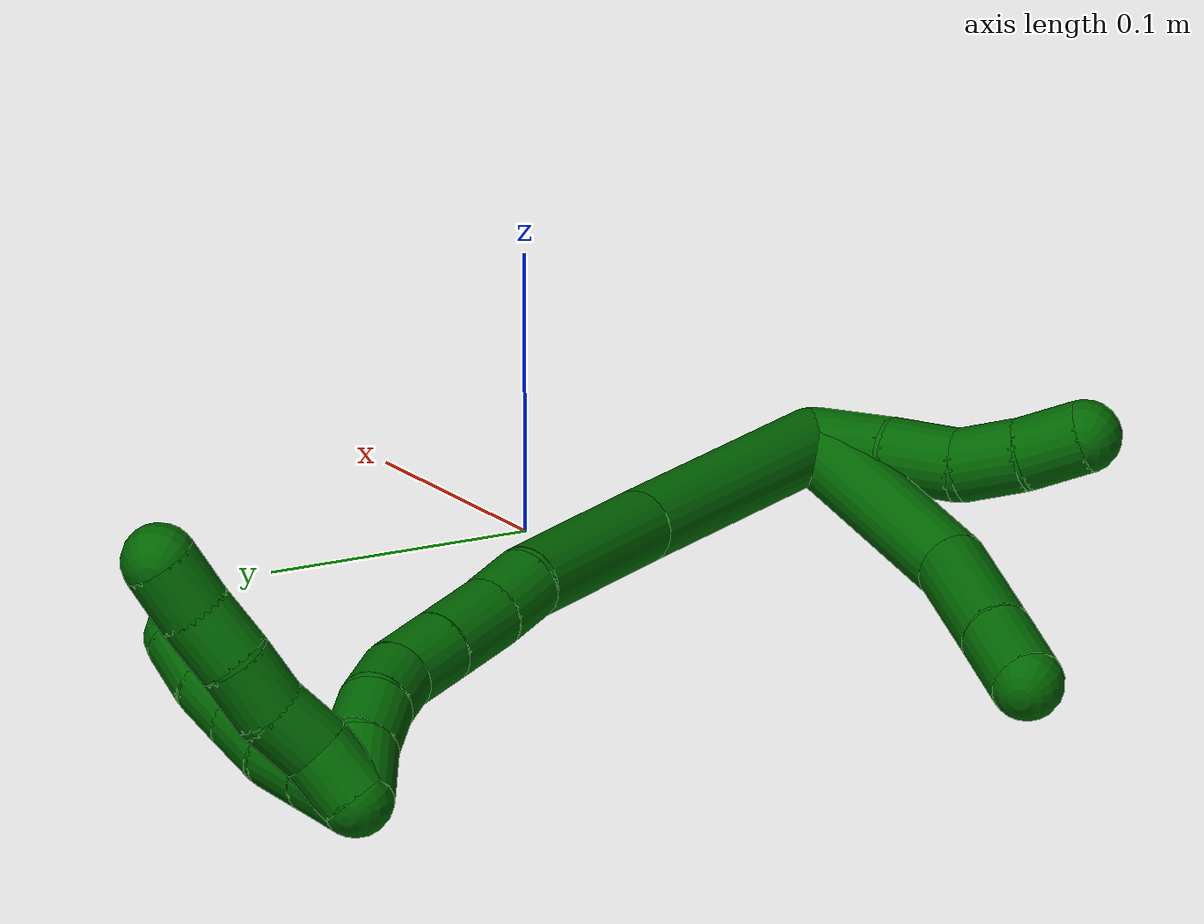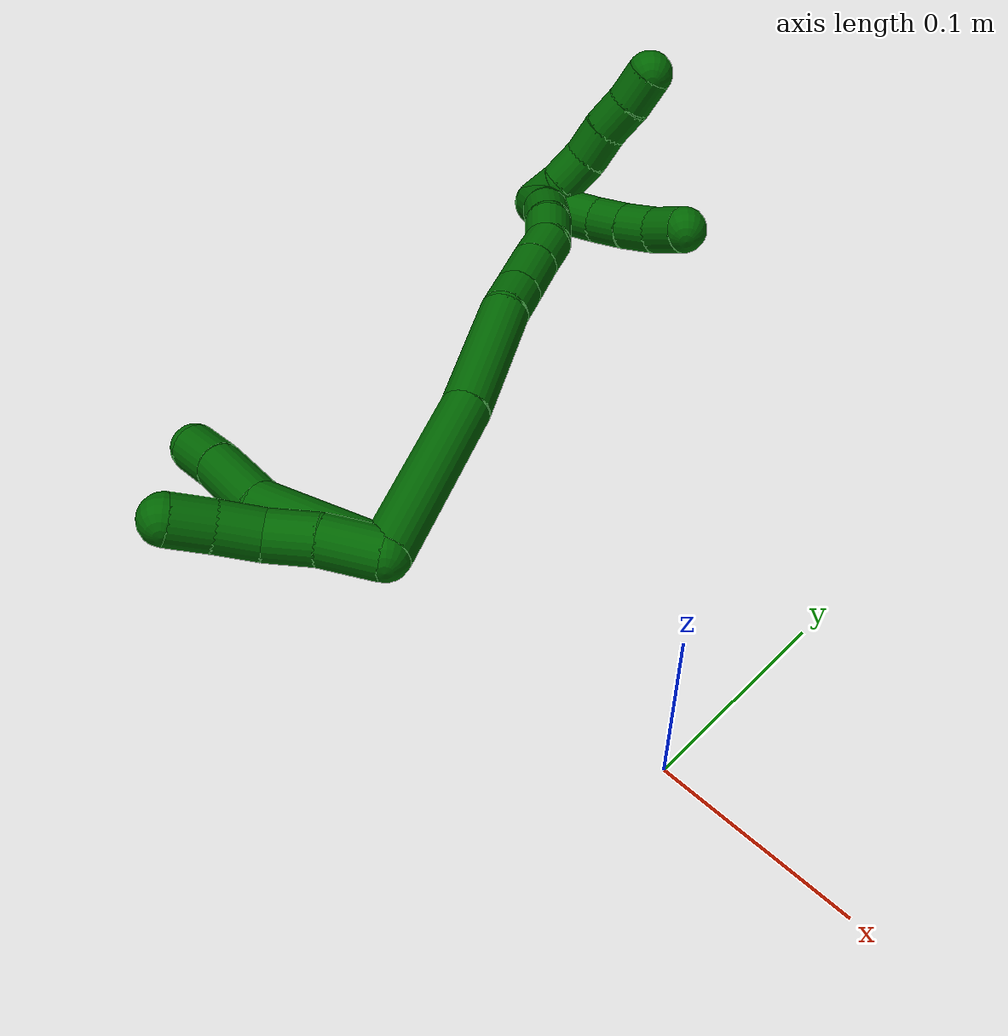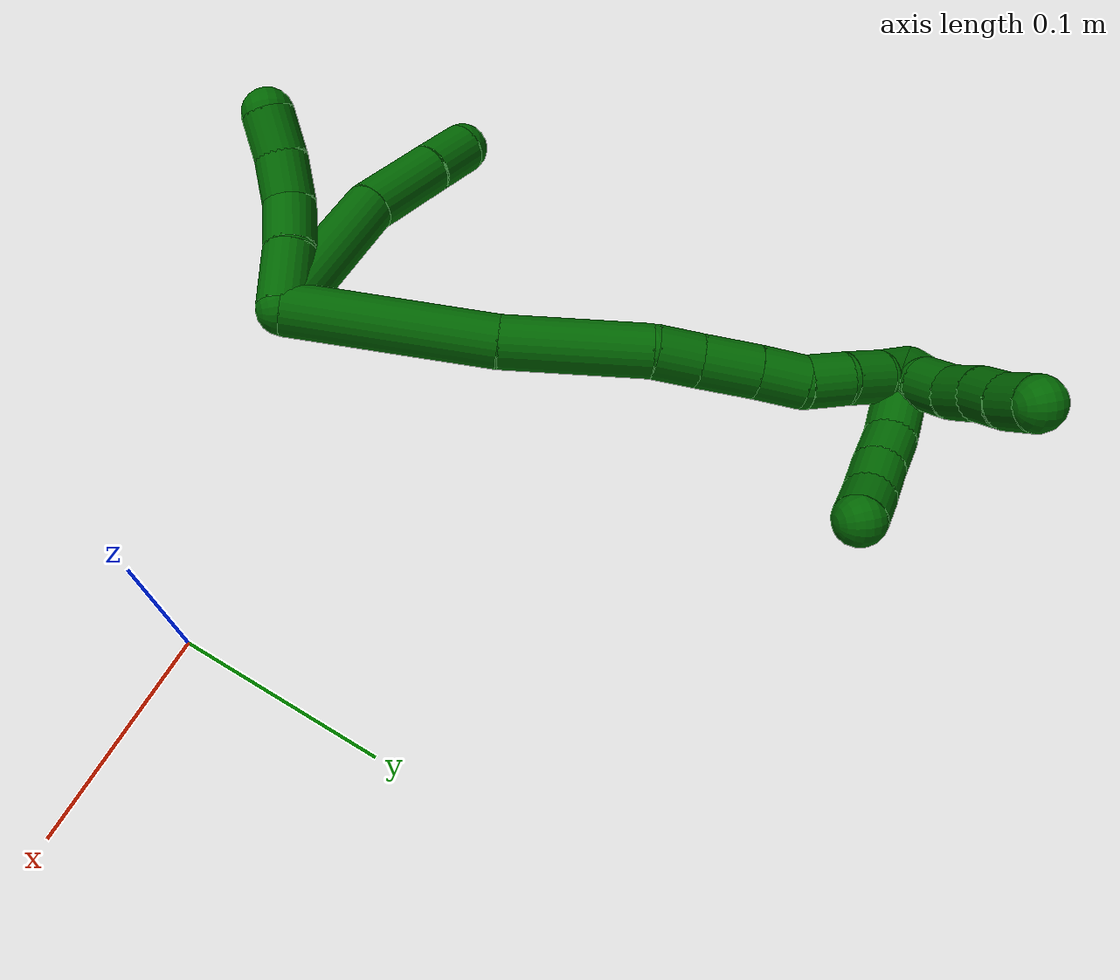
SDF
<sdf version="1.7">
 <world name="default">
  <model name="6">
   <static>0</static>
   <link name="6">
    <collision name="collision-cylinder-e_1_2_8">
     <pose>-0.001774 -0.030382 0.02645 0.854468 -0.044022 -0.020045</pose>
     <geometry><cylinder><radius>0.0125</radius><length>0.080643</length></cylinder></geometry>
     <surface>
      <friction><ode><mu>1.16</mu><mu2>1.16</mu2><slip1>0</slip1><slip2>0</slip2></ode></friction>
      <contact><ode><kp>1e+06</kp><kd>1</kd><max_vel>0</max_vel><min_depth>0.001</min_depth></ode></contact>
     </surface>
    </collision>
    <visual name="visual-cylinder-e_1_2_8">
     <pose>-0.001774 -0.030382 0.02645 0.854468 -0.044022 -0.020045</pose>
     <geometry><cylinder><radius>0.0125</radius><length>0.080643</length></cylinder></geometry>
     <material><ambient>0 0.392157 0.003922 1</ambient></material>
    </visual>
    <collision name="collision-cylinder-e_2_8_9">
     <pose>-0.004132 -0.072401 0.070863 0.574873 -0.027225 -0.008049</pose>
     <geometry><cylinder><radius>0.0125</radius><length>0.042821</length></cylinder></geometry>
     <surface>
      <friction><ode><mu>1.16</mu><mu2>1.16</mu2><slip1>0</slip1><slip2>0</slip2></ode></friction>
      <contact><ode><kp>1e+06</kp><kd>1</kd><max_vel>0</max_vel><min_depth>0.001</min_depth></ode></contact>
     </surface>
    </collision>
    <visual name="visual-cylinder-e_2_8_9">
     <pose>-0.004132 -0.072401 0.070863 0.574873 -0.027225 -0.008049</pose>
     <geometry><cylinder><radius>0.0125</radius><length>0.042821</length></cylinder></geometry>
     <material><ambient>0 0.392157 0.003922 1</ambient></material>
    </visual>
    <collision name="collision-cylinder-e_3_9_6">
     <pose>-0.006011 -0.091712 0.099571 0.620138 -0.09786 -0.031377</pose>
     <geometry><cylinder><radius>0.0125</radius><length>0.026536</length></cylinder></geometry>
     <surface>
      <friction><ode><mu>1.16</mu><mu2>1.16</mu2><slip1>0</slip1><slip2>0</slip2></ode></friction>
      <contact><ode><kp>1e+06</kp><kd>1</kd><max_vel>0</max_vel><min_depth>0.001</min_depth></ode></contact>
     </surface>
    </collision>
    <visual name="visual-cylinder-e_3_9_6">
     <pose>-0.006011 -0.091712 0.099571 0.620138 -0.09786 -0.031377</pose>
     <geometry><cylinder><radius>0.0125</radius><length>0.026536</length></cylinder></geometry>
     <material><ambient>0 0.392157 0.003922 1</ambient></material>
    </visual>
    <collision name="collision-cylinder-e_1_2_10">
     <pose>0.003971 -0.013811 0.00422 1.27428 0.268364 0.199157</pose>
     <geometry><cylinder><radius>0.0125</radius><length>0.029955</length></cylinder></geometry>
     <surface>
      <friction><ode><mu>1.16</mu><mu2>1.16</mu2><slip1>0</slip1><slip2>0</slip2></ode></friction>
      <contact><ode><kp>1e+06</kp><kd>1</kd><max_vel>0</max_vel><min_depth>0.001</min_depth></ode></contact>
     </surface>
    </collision>
    <visual name="visual-cylinder-e_1_2_10">
     <pose>0.003971 -0.013811 0.00422 1.27428 0.268364 0.199157</pose>
     <geometry><cylinder><radius>0.0125</radius><length>0.029955</length></cylinder></geometry>
     <material><ambient>0 0.392157 0.003922 1</ambient></material>
    </visual>
    <collision name="collision-cylinder-e_2_10_11">
     <pose>0.010224 -0.039833 0.010751 1.38374 0.181565 0.150553</pose>
     <geometry><cylinder><radius>0.0125</radius><length>0.025272</length></cylinder></geometry>
     <surface>
      <friction><ode><mu>1.16</mu><mu2>1.16</mu2><slip1>0</slip1><slip2>0</slip2></ode></friction>
      <contact><ode><kp>1e+06</kp><kd>1</kd><max_vel>0</max_vel><min_depth>0.001</min_depth></ode></contact>
     </surface>
    </collision>
    <visual name="visual-cylinder-e_2_10_11">
     <pose>0.010224 -0.039833 0.010751 1.38374 0.181565 0.150553</pose>
     <geometry><cylinder><radius>0.0125</radius><length>0.025272</length></cylinder></geometry>
     <material><ambient>0 0.392157 0.003922 1</ambient></material>
    </visual>
    <collision name="collision-cylinder-e_3_11_12">
     <pose>0.017561 -0.062239 0.013227 1.55458 0.460286 0.453134</pose>
     <geometry><cylinder><radius>0.0125</radius><length>0.02276</length></cylinder></geometry>
     <surface>
      <friction><ode><mu>1.16</mu><mu2>1.16</mu2><slip1>0</slip1><slip2>0</slip2></ode></friction>
      <contact><ode><kp>1e+06</kp><kd>1</kd><max_vel>0</max_vel><min_depth>0.001</min_depth></ode></contact>
     </surface>
    </collision>
    <visual name="visual-cylinder-e_3_11_12">
     <pose>0.017561 -0.062239 0.013227 1.55458 0.460286 0.453134</pose>
     <geometry><cylinder><radius>0.0125</radius><length>0.02276</length></cylinder></geometry>
     <material><ambient>0 0.392157 0.003922 1</ambient></material>
    </visual>
    <collision name="collision-cylinder-e_4_12_5">
     <pose>0.028152 -0.081874 0.012224 1.69392 0.527038 0.592509</pose>
     <geometry><cylinder><radius>0.0125</radius><length>0.022014</length></cylinder></geometry>
     <surface>
      <friction><ode><mu>1.16</mu><mu2>1.16</mu2><slip1>0</slip1><slip2>0</slip2></ode></friction>
      <contact><ode><kp>1e+06</kp><kd>1</kd><max_vel>0</max_vel><min_depth>0.001</min_depth></ode></contact>
     </surface>
    </collision>
    <visual name="visual-cylinder-e_4_12_5">
     <pose>0.028152 -0.081874 0.012224 1.69392 0.527038 0.592509</pose>
     <geometry><cylinder><radius>0.0125</radius><length>0.022014</length></cylinder></geometry>
     <material><ambient>0 0.392157 0.003922 1</ambient></material>
    </visual>
    <collision name="collision-cylinder-e_1_2_13">
     <pose>0.001098 0.019651 0.044391 -0.41676 0.022618 -0.004783</pose>
     <geometry><cylinder><radius>0.0125</radius><length>0.097117</length></cylinder></geometry>
     <surface>
      <friction><ode><mu>1.16</mu><mu2>1.16</mu2><slip1>0</slip1><slip2>0</slip2></ode></friction>
      <contact><ode><kp>1e+06</kp><kd>1</kd><max_vel>0</max_vel><min_depth>0.001</min_depth></ode></contact>
     </surface>
    </collision>
    <visual name="visual-cylinder-e_1_2_13">
     <pose>0.001098 0.019651 0.044391 -0.41676 0.022618 -0.004783</pose>
     <geometry><cylinder><radius>0.0125</radius><length>0.097117</length></cylinder></geometry>
     <material><ambient>0 0.392157 0.003922 1</ambient></material>
    </visual>
    <collision name="collision-cylinder-e_2_13_14">
     <pose>0.004923 0.050908 0.121203 -0.343738 0.07902 -0.013723</pose>
     <geometry><cylinder><radius>0.0125</radius><length>0.069088</length></cylinder></geometry>
     <surface>
      <friction><ode><mu>1.16</mu><mu2>1.16</mu2><slip1>0</slip1><slip2>0</slip2></ode></friction>
      <contact><ode><kp>1e+06</kp><kd>1</kd><max_vel>0</max_vel><min_depth>0.001</min_depth></ode></contact>
     </surface>
    </collision>
    <visual name="visual-cylinder-e_2_13_14">
     <pose>0.004923 0.050908 0.121203 -0.343738 0.07902 -0.013723</pose>
     <geometry><cylinder><radius>0.0125</radius><length>0.069088</length></cylinder></geometry>
     <material><ambient>0 0.392157 0.003922 1</ambient></material>
    </visual>
    <collision name="collision-cylinder-e_3_14_15">
     <pose>0.006192 0.066 0.163619 -0.335649 -0.136882 0.023225</pose>
     <geometry><cylinder><radius>0.0125</radius><length>0.021371</length></cylinder></geometry>
     <surface>
      <friction><ode><mu>1.16</mu><mu2>1.16</mu2><slip1>0</slip1><slip2>0</slip2></ode></friction>
      <contact><ode><kp>1e+06</kp><kd>1</kd><max_vel>0</max_vel><min_depth>0.001</min_depth></ode></contact>
     </surface>
    </collision>
    <visual name="visual-cylinder-e_3_14_15">
     <pose>0.006192 0.066 0.163619 -0.335649 -0.136882 0.023225</pose>
     <geometry><cylinder><radius>0.0125</radius><length>0.021371</length></cylinder></geometry>
     <material><ambient>0 0.392157 0.003922 1</ambient></material>
    </visual>
    <collision name="collision-cylinder-e_4_15_16">
     <pose>0.003622 0.074405 0.186344 -0.368724 -0.081307 0.01517</pose>
     <geometry><cylinder><radius>0.0125</radius><length>0.027384</length></cylinder></geometry>
     <surface>
      <friction><ode><mu>1.16</mu><mu2>1.16</mu2><slip1>0</slip1><slip2>0</slip2></ode></friction>
      <contact><ode><kp>1e+06</kp><kd>1</kd><max_vel>0</max_vel><min_depth>0.001</min_depth></ode></contact>
     </surface>
    </collision>
    <visual name="visual-cylinder-e_4_15_16">
     <pose>0.003622 0.074405 0.186344 -0.368724 -0.081307 0.01517</pose>
     <geometry><cylinder><radius>0.0125</radius><length>0.027384</length></cylinder></geometry>
     <material><ambient>0 0.392157 0.003922 1</ambient></material>
    </visual>
    <collision name="collision-cylinder-e_5_16_17">
     <pose>0.001344 0.08357 0.20941 -0.389756 -0.10397 0.02054</pose>
     <geometry><cylinder><radius>0.0125</radius><length>0.022471</length></cylinder></geometry>
     <surface>
      <friction><ode><mu>1.16</mu><mu2>1.16</mu2><slip1>0</slip1><slip2>0</slip2></ode></friction>
      <contact><ode><kp>1e+06</kp><kd>1</kd><max_vel>0</max_vel><min_depth>0.001</min_depth></ode></contact>
     </surface>
    </collision>
    <visual name="visual-cylinder-e_5_16_17">
     <pose>0.001344 0.08357 0.20941 -0.389756 -0.10397 0.02054</pose>
     <geometry><cylinder><radius>0.0125</radius><length>0.022471</length></cylinder></geometry>
     <material><ambient>0 0.392157 0.003922 1</ambient></material>
    </visual>
    <collision name="collision-cylinder-e_6_17_18">
     <pose>-7.3e-05 0.088519 0.230031 -0.068251 -0.024303 0.00083</pose>
     <geometry><cylinder><radius>0.0125</radius><length>0.020623</length></cylinder></geometry>
     <surface>
      <friction><ode><mu>1.16</mu><mu2>1.16</mu2><slip1>0</slip1><slip2>0</slip2></ode></friction>
      <contact><ode><kp>1e+06</kp><kd>1</kd><max_vel>0</max_vel><min_depth>0.001</min_depth></ode></contact>
     </surface>
    </collision>
    <visual name="visual-cylinder-e_6_17_18">
     <pose>-7.3e-05 0.088519 0.230031 -0.068251 -0.024303 0.00083</pose>
     <geometry><cylinder><radius>0.0125</radius><length>0.020623</length></cylinder></geometry>
     <material><ambient>0 0.392157 0.003922 1</ambient></material>
    </visual>
    <collision name="collision-cylinder-e_7_18_19">
     <pose>-0.002454 0.088737 0.250274 0.048687 -0.210506 -0.005144</pose>
     <geometry><cylinder><radius>0.0125</radius><length>0.020391</length></cylinder></geometry>
     <surface>
      <friction><ode><mu>1.16</mu><mu2>1.16</mu2><slip1>0</slip1><slip2>0</slip2></ode></friction>
      <contact><ode><kp>1e+06</kp><kd>1</kd><max_vel>0</max_vel><min_depth>0.001</min_depth></ode></contact>
     </surface>
    </collision>
    <visual name="visual-cylinder-e_7_18_19">
     <pose>-0.002454 0.088737 0.250274 0.048687 -0.210506 -0.005144</pose>
     <geometry><cylinder><radius>0.0125</radius><length>0.020391</length></cylinder></geometry>
     <material><ambient>0 0.392157 0.003922 1</ambient></material>
    </visual>
    <collision name="collision-cylinder-e_8_19_1">
     <pose>-0.008077 0.085849 0.270142 0.237851 -0.330009 -0.039789</pose>
     <geometry><cylinder><radius>0.0125</radius><length>0.021556</length></cylinder></geometry>
     <surface>
      <friction><ode><mu>1.16</mu><mu2>1.16</mu2><slip1>0</slip1><slip2>0</slip2></ode></friction>
      <contact><ode><kp>1e+06</kp><kd>1</kd><max_vel>0</max_vel><min_depth>0.001</min_depth></ode></contact>
     </surface>
    </collision>
    <visual name="visual-cylinder-e_8_19_1">
     <pose>-0.008077 0.085849 0.270142 0.237851 -0.330009 -0.039789</pose>
     <geometry><cylinder><radius>0.0125</radius><length>0.021556</length></cylinder></geometry>
     <material><ambient>0 0.392157 0.003922 1</ambient></material>
    </visual>
    <collision name="collision-cylinder-e_1_1_20">
     <pose>-0.005746 0.091319 0.278022 -1.82312 0.621556 -0.785883</pose>
     <geometry><cylinder><radius>0.0125</radius><length>0.02</length></cylinder></geometry>
     <surface>
      <friction><ode><mu>1.16</mu><mu2>1.16</mu2><slip1>0</slip1><slip2>0</slip2></ode></friction>
      <contact><ode><kp>1e+06</kp><kd>1</kd><max_vel>0</max_vel><min_depth>0.001</min_depth></ode></contact>
     </surface>
    </collision>
    <visual name="visual-cylinder-e_1_1_20">
     <pose>-0.005746 0.091319 0.278022 -1.82312 0.621556 -0.785883</pose>
     <geometry><cylinder><radius>0.0125</radius><length>0.02</length></cylinder></geometry>
     <material><ambient>0 0.392157 0.003922 1</ambient></material>
    </visual>
    <collision name="collision-cylinder-e_2_20_21">
     <pose>0.005825 0.107258 0.277362 -1.40251 0.612443 -0.521794</pose>
     <geometry><cylinder><radius>0.0125</radius><length>0.02</length></cylinder></geometry>
     <surface>
      <friction><ode><mu>1.16</mu><mu2>1.16</mu2><slip1>0</slip1><slip2>0</slip2></ode></friction>
      <contact><ode><kp>1e+06</kp><kd>1</kd><max_vel>0</max_vel><min_depth>0.001</min_depth></ode></contact>
     </surface>
    </collision>
    <visual name="visual-cylinder-e_2_20_21">
     <pose>0.005825 0.107258 0.277362 -1.40251 0.612443 -0.521794</pose>
     <geometry><cylinder><radius>0.0125</radius><length>0.02</length></cylinder></geometry>
     <material><ambient>0 0.392157 0.003922 1</ambient></material>
    </visual>
    <collision name="collision-cylinder-e_3_21_22">
     <pose>0.018926 0.122083 0.279265 -1.4922 0.825941 -0.769645</pose>
     <geometry><cylinder><radius>0.0125</radius><length>0.02</length></cylinder></geometry>
     <surface>
      <friction><ode><mu>1.16</mu><mu2>1.16</mu2><slip1>0</slip1><slip2>0</slip2></ode></friction>
      <contact><ode><kp>1e+06</kp><kd>1</kd><max_vel>0</max_vel><min_depth>0.001</min_depth></ode></contact>
     </surface>
    </collision>
    <visual name="visual-cylinder-e_3_21_22">
     <pose>0.018926 0.122083 0.279265 -1.4922 0.825941 -0.769645</pose>
     <geometry><cylinder><radius>0.0125</radius><length>0.02</length></cylinder></geometry>
     <material><ambient>0 0.392157 0.003922 1</ambient></material>
    </visual>
    <collision name="collision-cylinder-e_4_22_23">
     <pose>0.03286 0.136357 0.279384 -1.6258 0.718519 -0.755499</pose>
     <geometry><cylinder><radius>0.0125</radius><length>0.02</length></cylinder></geometry>
     <surface>
      <friction><ode><mu>1.16</mu><mu2>1.16</mu2><slip1>0</slip1><slip2>0</slip2></ode></friction>
      <contact><ode><kp>1e+06</kp><kd>1</kd><max_vel>0</max_vel><min_depth>0.001</min_depth></ode></contact>
     </surface>
    </collision>
    <visual name="visual-cylinder-e_4_22_23">
     <pose>0.03286 0.136357 0.279384 -1.6258 0.718519 -0.755499</pose>
     <geometry><cylinder><radius>0.0125</radius><length>0.02</length></cylinder></geometry>
     <material><ambient>0 0.392157 0.003922 1</ambient></material>
    </visual>
    <collision name="collision-cylinder-e_5_23_4">
     <pose>0.046843 0.150597 0.279157 -1.5429 0.833051 -0.812598</pose>
     <geometry><cylinder><radius>0.0125</radius><length>0.02</length></cylinder></geometry>
     <surface>
      <friction><ode><mu>1.16</mu><mu2>1.16</mu2><slip1>0</slip1><slip2>0</slip2></ode></friction>
      <contact><ode><kp>1e+06</kp><kd>1</kd><max_vel>0</max_vel><min_depth>0.001</min_depth></ode></contact>
     </surface>
    </collision>
    <visual name="visual-cylinder-e_5_23_4">
     <pose>0.046843 0.150597 0.279157 -1.5429 0.833051 -0.812598</pose>
     <geometry><cylinder><radius>0.0125</radius><length>0.02</length></cylinder></geometry>
     <material><ambient>0 0.392157 0.003922 1</ambient></material>
    </visual>
    <collision name="collision-cylinder-e_1_1_24">
     <pose>-0.012774 0.091342 0.274034 -2.22195 -0.120753 0.242931</pose>
     <geometry><cylinder><radius>0.0125</radius><length>0.02</length></cylinder></geometry>
     <surface>
      <friction><ode><mu>1.16</mu><mu2>1.16</mu2><slip1>0</slip1><slip2>0</slip2></ode></friction>
      <contact><ode><kp>1e+06</kp><kd>1</kd><max_vel>0</max_vel><min_depth>0.001</min_depth></ode></contact>
     </surface>
    </collision>
    <visual name="visual-cylinder-e_1_1_24">
     <pose>-0.012774 0.091342 0.274034 -2.22195 -0.120753 0.242931</pose>
     <geometry><cylinder><radius>0.0125</radius><length>0.02</length></cylinder></geometry>
     <material><ambient>0 0.392157 0.003922 1</ambient></material>
    </visual>
    <collision name="collision-cylinder-e_2_24_25">
     <pose>-0.014934 0.107405 0.262325 -2.17951 -0.095674 0.182935</pose>
     <geometry><cylinder><radius>0.0125</radius><length>0.02</length></cylinder></geometry>
     <surface>
      <friction><ode><mu>1.16</mu><mu2>1.16</mu2><slip1>0</slip1><slip2>0</slip2></ode></friction>
      <contact><ode><kp>1e+06</kp><kd>1</kd><max_vel>0</max_vel><min_depth>0.001</min_depth></ode></contact>
     </surface>
    </collision>
    <visual name="visual-cylinder-e_2_24_25">
     <pose>-0.014934 0.107405 0.262325 -2.17951 -0.095674 0.182935</pose>
     <geometry><cylinder><radius>0.0125</radius><length>0.02</length></cylinder></geometry>
     <material><ambient>0 0.392157 0.003922 1</ambient></material>
    </visual>
    <collision name="collision-cylinder-e_3_25_26">
     <pose>-0.015276 0.122958 0.249921 -2.30831 0.061399 -0.138562</pose>
     <geometry><cylinder><radius>0.0125</radius><length>0.02</length></cylinder></geometry>
     <surface>
      <friction><ode><mu>1.16</mu><mu2>1.16</mu2><slip1>0</slip1><slip2>0</slip2></ode></friction>
      <contact><ode><kp>1e+06</kp><kd>1</kd><max_vel>0</max_vel><min_depth>0.001</min_depth></ode></contact>
     </surface>
    </collision>
    <visual name="visual-cylinder-e_3_25_26">
     <pose>-0.015276 0.122958 0.249921 -2.30831 0.061399 -0.138562</pose>
     <geometry><cylinder><radius>0.0125</radius><length>0.02</length></cylinder></geometry>
     <material><ambient>0 0.392157 0.003922 1</ambient></material>
    </visual>
    <collision name="collision-cylinder-e_4_26_27">
     <pose>-0.013547 0.137923 0.236779 -2.27453 0.111699 -0.240386</pose>
     <geometry><cylinder><radius>0.0125</radius><length>0.02</length></cylinder></geometry>
     <surface>
      <friction><ode><mu>1.16</mu><mu2>1.16</mu2><slip1>0</slip1><slip2>0</slip2></ode></friction>
      <contact><ode><kp>1e+06</kp><kd>1</kd><max_vel>0</max_vel><min_depth>0.001</min_depth></ode></contact>
     </surface>
    </collision>
    <visual name="visual-cylinder-e_4_26_27">
     <pose>-0.013547 0.137923 0.236779 -2.27453 0.111699 -0.240386</pose>
     <geometry><cylinder><radius>0.0125</radius><length>0.02</length></cylinder></geometry>
     <material><ambient>0 0.392157 0.003922 1</ambient></material>
    </visual>
    <collision name="collision-cylinder-e_5_27_3">
     <pose>-0.009537 0.152463 0.223782 -2.32686 0.293728 -0.660535</pose>
     <geometry><cylinder><radius>0.0125</radius><length>0.02</length></cylinder></geometry>
     <surface>
      <friction><ode><mu>1.16</mu><mu2>1.16</mu2><slip1>0</slip1><slip2>0</slip2></ode></friction>
      <contact><ode><kp>1e+06</kp><kd>1</kd><max_vel>0</max_vel><min_depth>0.001</min_depth></ode></contact>
     </surface>
    </collision>
    <visual name="visual-cylinder-e_5_27_3">
     <pose>-0.009537 0.152463 0.223782 -2.32686 0.293728 -0.660535</pose>
     <geometry><cylinder><radius>0.0125</radius><length>0.02</length></cylinder></geometry>
     <material><ambient>0 0.392157 0.003922 1</ambient></material>
    </visual>
    <collision name="collision-sphere-3">
     <pose>-0.006642 0.159427 0.217215 0 -0 0</pose>
     <geometry><sphere><radius>0.0125</radius></sphere></geometry>
     <surface>
      <friction><ode><mu>1.16</mu><mu2>1.16</mu2><slip1>0</slip1><slip2>0</slip2></ode></friction>
      <contact><ode><kp>1e+06</kp><kd>1</kd><max_vel>0</max_vel><min_depth>0.001</min_depth></ode></contact>
     </surface>
    </collision>
    <visual name="visual-sphere-3">
     <pose>-0.006642 0.159427 0.217215 0 -0 0</pose>
     <geometry><sphere><radius>0.0125</radius></sphere></geometry>
     <material><ambient>0 0.392157 0.003922 1</ambient></material>
    </visual>
    <collision name="collision-sphere-27">
     <pose>-0.012433 0.145499 0.230349 0 -0 0</pose>
     <geometry><sphere><radius>0.0125</radius></sphere></geometry>
     <surface>
      <friction><ode><mu>1.16</mu><mu2>1.16</mu2><slip1>0</slip1><slip2>0</slip2></ode></friction>
      <contact><ode><kp>1e+06</kp><kd>1</kd><max_vel>0</max_vel><min_depth>0.001</min_depth></ode></contact>
     </surface>
    </collision>
    <visual name="visual-sphere-27">
     <pose>-0.012433 0.145499 0.230349 0 -0 0</pose>
     <geometry><sphere><radius>0.0125</radius></sphere></geometry>
     <material><ambient>0 0.392157 0.003922 1</ambient></material>
    </visual>
    <collision name="collision-sphere-26">
     <pose>-0.014662 0.130346 0.24321 0 -0 0</pose>
     <geometry><sphere><radius>0.0125</radius></sphere></geometry>
     <surface>
      <friction><ode><mu>1.16</mu><mu2>1.16</mu2><slip1>0</slip1><slip2>0</slip2></ode></friction>
      <contact><ode><kp>1e+06</kp><kd>1</kd><max_vel>0</max_vel><min_depth>0.001</min_depth></ode></contact>
     </surface>
    </collision>
    <visual name="visual-sphere-26">
     <pose>-0.014662 0.130346 0.24321 0 -0 0</pose>
     <geometry><sphere><radius>0.0125</radius></sphere></geometry>
     <material><ambient>0 0.392157 0.003922 1</ambient></material>
    </visual>
    <collision name="collision-sphere-25">
     <pose>-0.015889 0.115571 0.256633 0 -0 0</pose>
     <geometry><sphere><radius>0.0125</radius></sphere></geometry>
     <surface>
      <friction><ode><mu>1.16</mu><mu2>1.16</mu2><slip1>0</slip1><slip2>0</slip2></ode></friction>
      <contact><ode><kp>1e+06</kp><kd>1</kd><max_vel>0</max_vel><min_depth>0.001</min_depth></ode></contact>
     </surface>
    </collision>
    <visual name="visual-sphere-25">
     <pose>-0.015889 0.115571 0.256633 0 -0 0</pose>
     <geometry><sphere><radius>0.0125</radius></sphere></geometry>
     <material><ambient>0 0.392157 0.003922 1</ambient></material>
    </visual>
    <collision name="collision-sphere-24">
     <pose>-0.013979 0.099238 0.268017 0 -0 0</pose>
     <geometry><sphere><radius>0.0125</radius></sphere></geometry>
     <surface>
      <friction><ode><mu>1.16</mu><mu2>1.16</mu2><slip1>0</slip1><slip2>0</slip2></ode></friction>
      <contact><ode><kp>1e+06</kp><kd>1</kd><max_vel>0</max_vel><min_depth>0.001</min_depth></ode></contact>
     </surface>
    </collision>
    <visual name="visual-sphere-24">
     <pose>-0.013979 0.099238 0.268017 0 -0 0</pose>
     <geometry><sphere><radius>0.0125</radius></sphere></geometry>
     <material><ambient>0 0.392157 0.003922 1</ambient></material>
    </visual>
    <collision name="collision-sphere-4">
     <pose>0.054243 0.15732 0.279345 0 -0 0</pose>
     <geometry><sphere><radius>0.0125</radius></sphere></geometry>
     <surface>
      <friction><ode><mu>1.16</mu><mu2>1.16</mu2><slip1>0</slip1><slip2>0</slip2></ode></friction>
      <contact><ode><kp>1e+06</kp><kd>1</kd><max_vel>0</max_vel><min_depth>0.001</min_depth></ode></contact>
     </surface>
    </collision>
    <visual name="visual-sphere-4">
     <pose>0.054243 0.15732 0.279345 0 -0 0</pose>
     <geometry><sphere><radius>0.0125</radius></sphere></geometry>
     <material><ambient>0 0.392157 0.003922 1</ambient></material>
    </visual>
    <collision name="collision-sphere-23">
     <pose>0.039443 0.143873 0.27897 0 -0 0</pose>
     <geometry><sphere><radius>0.0125</radius></sphere></geometry>
     <surface>
      <friction><ode><mu>1.16</mu><mu2>1.16</mu2><slip1>0</slip1><slip2>0</slip2></ode></friction>
      <contact><ode><kp>1e+06</kp><kd>1</kd><max_vel>0</max_vel><min_depth>0.001</min_depth></ode></contact>
     </surface>
    </collision>
    <visual name="visual-sphere-23">
     <pose>0.039443 0.143873 0.27897 0 -0 0</pose>
     <geometry><sphere><radius>0.0125</radius></sphere></geometry>
     <material><ambient>0 0.392157 0.003922 1</ambient></material>
    </visual>
    <collision name="collision-sphere-22">
     <pose>0.026278 0.12884 0.279797 0 -0 0</pose>
     <geometry><sphere><radius>0.0125</radius></sphere></geometry>
     <surface>
      <friction><ode><mu>1.16</mu><mu2>1.16</mu2><slip1>0</slip1><slip2>0</slip2></ode></friction>
      <contact><ode><kp>1e+06</kp><kd>1</kd><max_vel>0</max_vel><min_depth>0.001</min_depth></ode></contact>
     </surface>
    </collision>
    <visual name="visual-sphere-22">
     <pose>0.026278 0.12884 0.279797 0 -0 0</pose>
     <geometry><sphere><radius>0.0125</radius></sphere></geometry>
     <material><ambient>0 0.392157 0.003922 1</ambient></material>
    </visual>
    <collision name="collision-sphere-21">
     <pose>0.011574 0.115325 0.278733 0 -0 0</pose>
     <geometry><sphere><radius>0.0125</radius></sphere></geometry>
     <surface>
      <friction><ode><mu>1.16</mu><mu2>1.16</mu2><slip1>0</slip1><slip2>0</slip2></ode></friction>
      <contact><ode><kp>1e+06</kp><kd>1</kd><max_vel>0</max_vel><min_depth>0.001</min_depth></ode></contact>
     </surface>
    </collision>
    <visual name="visual-sphere-21">
     <pose>0.011574 0.115325 0.278733 0 -0 0</pose>
     <geometry><sphere><radius>0.0125</radius></sphere></geometry>
     <material><ambient>0 0.392157 0.003922 1</ambient></material>
    </visual>
    <collision name="collision-sphere-20">
     <pose>7.7e-05 0.099191 0.275992 0 -0 0</pose>
     <geometry><sphere><radius>0.0125</radius></sphere></geometry>
     <surface>
      <friction><ode><mu>1.16</mu><mu2>1.16</mu2><slip1>0</slip1><slip2>0</slip2></ode></friction>
      <contact><ode><kp>1e+06</kp><kd>1</kd><max_vel>0</max_vel><min_depth>0.001</min_depth></ode></contact>
     </surface>
    </collision>
    <visual name="visual-sphere-20">
     <pose>7.7e-05 0.099191 0.275992 0 -0 0</pose>
     <geometry><sphere><radius>0.0125</radius></sphere></geometry>
     <material><ambient>0 0.392157 0.003922 1</ambient></material>
    </visual>
    <collision name="collision-sphere-11">
     <pose>0.012506 -0.052045 0.013062 0 -0 0</pose>
     <geometry><sphere><radius>0.0125</radius></sphere></geometry>
     <surface>
      <friction><ode><mu>1.16</mu><mu2>1.16</mu2><slip1>0</slip1><slip2>0</slip2></ode></friction>
      <contact><ode><kp>1e+06</kp><kd>1</kd><max_vel>0</max_vel><min_depth>0.001</min_depth></ode></contact>
     </surface>
    </collision>
    <visual name="visual-sphere-11">
     <pose>0.012506 -0.052045 0.013062 0 -0 0</pose>
     <geometry><sphere><radius>0.0125</radius></sphere></geometry>
     <material><ambient>0 0.392157 0.003922 1</ambient></material>
    </visual>
    <collision name="collision-sphere-10">
     <pose>0.007943 -0.027622 0.008439 0 -0 0</pose>
     <geometry><sphere><radius>0.0125</radius></sphere></geometry>
     <surface>
      <friction><ode><mu>1.16</mu><mu2>1.16</mu2><slip1>0</slip1><slip2>0</slip2></ode></friction>
      <contact><ode><kp>1e+06</kp><kd>1</kd><max_vel>0</max_vel><min_depth>0.001</min_depth></ode></contact>
     </surface>
    </collision>
    <visual name="visual-sphere-10">
     <pose>0.007943 -0.027622 0.008439 0 -0 0</pose>
     <geometry><sphere><radius>0.0125</radius></sphere></geometry>
     <material><ambient>0 0.392157 0.003922 1</ambient></material>
    </visual>
    <collision name="collision-sphere-6">
     <pose>-0.007307 -0.099386 0.110317 0 -0 0</pose>
     <geometry><sphere><radius>0.0125</radius></sphere></geometry>
     <surface>
      <friction><ode><mu>1.16</mu><mu2>1.16</mu2><slip1>0</slip1><slip2>0</slip2></ode></friction>
      <contact><ode><kp>1e+06</kp><kd>1</kd><max_vel>0</max_vel><min_depth>0.001</min_depth></ode></contact>
     </surface>
    </collision>
    <visual name="visual-sphere-6">
     <pose>-0.007307 -0.099386 0.110317 0 -0 0</pose>
     <geometry><sphere><radius>0.0125</radius></sphere></geometry>
     <material><ambient>0 0.392157 0.003922 1</ambient></material>
    </visual>
    <collision name="collision-sphere-9">
     <pose>-0.004715 -0.084038 0.088825 0 -0 0</pose>
     <geometry><sphere><radius>0.0125</radius></sphere></geometry>
     <surface>
      <friction><ode><mu>1.16</mu><mu2>1.16</mu2><slip1>0</slip1><slip2>0</slip2></ode></friction>
      <contact><ode><kp>1e+06</kp><kd>1</kd><max_vel>0</max_vel><min_depth>0.001</min_depth></ode></contact>
     </surface>
    </collision>
    <visual name="visual-sphere-9">
     <pose>-0.004715 -0.084038 0.088825 0 -0 0</pose>
     <geometry><sphere><radius>0.0125</radius></sphere></geometry>
     <material><ambient>0 0.392157 0.003922 1</ambient></material>
    </visual>
    <collision name="collision-sphere-2">
     <geometry><sphere><radius>0.0125</radius></sphere></geometry>
     <surface>
      <friction><ode><mu>1.16</mu><mu2>1.16</mu2><slip1>0</slip1><slip2>0</slip2></ode></friction>
      <contact><ode><kp>1e+06</kp><kd>1</kd><max_vel>0</max_vel><min_depth>0.001</min_depth></ode></contact>
     </surface>
    </collision>
    <visual name="visual-sphere-2">
     <geometry><sphere><radius>0.0125</radius></sphere></geometry>
     <material><ambient>0 0.392157 0.003922 1</ambient></material>
    </visual>
    <collision name="collision-sphere-19">
     <pose>-0.004584 0.088251 0.260232 0 -0 0</pose>
     <geometry><sphere><radius>0.0125</radius></sphere></geometry>
     <surface>
      <friction><ode><mu>1.16</mu><mu2>1.16</mu2><slip1>0</slip1><slip2>0</slip2></ode></friction>
      <contact><ode><kp>1e+06</kp><kd>1</kd><max_vel>0</max_vel><min_depth>0.001</min_depth></ode></contact>
     </surface>
    </collision>
    <visual name="visual-sphere-19">
     <pose>-0.004584 0.088251 0.260232 0 -0 0</pose>
     <geometry><sphere><radius>0.0125</radius></sphere></geometry>
     <material><ambient>0 0.392157 0.003922 1</ambient></material>
    </visual>
    <collision name="collision-sphere-8">
     <pose>-0.003549 -0.060763 0.0529 0 -0 0</pose>
     <geometry><sphere><radius>0.0125</radius></sphere></geometry>
     <surface>
      <friction><ode><mu>1.16</mu><mu2>1.16</mu2><slip1>0</slip1><slip2>0</slip2></ode></friction>
      <contact><ode><kp>1e+06</kp><kd>1</kd><max_vel>0</max_vel><min_depth>0.001</min_depth></ode></contact>
     </surface>
    </collision>
    <visual name="visual-sphere-8">
     <pose>-0.003549 -0.060763 0.0529 0 -0 0</pose>
     <geometry><sphere><radius>0.0125</radius></sphere></geometry>
     <material><ambient>0 0.392157 0.003922 1</ambient></material>
    </visual>
    <collision name="collision-sphere-12">
     <pose>0.022616 -0.072433 0.013393 0 -0 0</pose>
     <geometry><sphere><radius>0.0125</radius></sphere></geometry>
     <surface>
      <friction><ode><mu>1.16</mu><mu2>1.16</mu2><slip1>0</slip1><slip2>0</slip2></ode></friction>
      <contact><ode><kp>1e+06</kp><kd>1</kd><max_vel>0</max_vel><min_depth>0.001</min_depth></ode></contact>
     </surface>
    </collision>
    <visual name="visual-sphere-12">
     <pose>0.022616 -0.072433 0.013393 0 -0 0</pose>
     <geometry><sphere><radius>0.0125</radius></sphere></geometry>
     <material><ambient>0 0.392157 0.003922 1</ambient></material>
    </visual>
    <collision name="collision-sphere-5">
     <pose>0.033688 -0.091316 0.011056 0 -0 0</pose>
     <geometry><sphere><radius>0.0125</radius></sphere></geometry>
     <surface>
      <friction><ode><mu>1.16</mu><mu2>1.16</mu2><slip1>0</slip1><slip2>0</slip2></ode></friction>
      <contact><ode><kp>1e+06</kp><kd>1</kd><max_vel>0</max_vel><min_depth>0.001</min_depth></ode></contact>
     </surface>
    </collision>
    <visual name="visual-sphere-5">
     <pose>0.033688 -0.091316 0.011056 0 -0 0</pose>
     <geometry><sphere><radius>0.0125</radius></sphere></geometry>
     <material><ambient>0 0.392157 0.003922 1</ambient></material>
    </visual>
    <collision name="collision-sphere-13">
     <pose>0.002196 0.039303 0.088781 0 -0 0</pose>
     <geometry><sphere><radius>0.0125</radius></sphere></geometry>
     <surface>
      <friction><ode><mu>1.16</mu><mu2>1.16</mu2><slip1>0</slip1><slip2>0</slip2></ode></friction>
      <contact><ode><kp>1e+06</kp><kd>1</kd><max_vel>0</max_vel><min_depth>0.001</min_depth></ode></contact>
     </surface>
    </collision>
    <visual name="visual-sphere-13">
     <pose>0.002196 0.039303 0.088781 0 -0 0</pose>
     <geometry><sphere><radius>0.0125</radius></sphere></geometry>
     <material><ambient>0 0.392157 0.003922 1</ambient></material>
    </visual>
    <collision name="collision-sphere-14">
     <pose>0.00765 0.062513 0.153624 0 -0 0</pose>
     <geometry><sphere><radius>0.0125</radius></sphere></geometry>
     <surface>
      <friction><ode><mu>1.16</mu><mu2>1.16</mu2><slip1>0</slip1><slip2>0</slip2></ode></friction>
      <contact><ode><kp>1e+06</kp><kd>1</kd><max_vel>0</max_vel><min_depth>0.001</min_depth></ode></contact>
     </surface>
    </collision>
    <visual name="visual-sphere-14">
     <pose>0.00765 0.062513 0.153624 0 -0 0</pose>
     <geometry><sphere><radius>0.0125</radius></sphere></geometry>
     <material><ambient>0 0.392157 0.003922 1</ambient></material>
    </visual>
    <collision name="collision-sphere-15">
     <pose>0.004734 0.069487 0.173614 0 -0 0</pose>
     <geometry><sphere><radius>0.0125</radius></sphere></geometry>
     <surface>
      <friction><ode><mu>1.16</mu><mu2>1.16</mu2><slip1>0</slip1><slip2>0</slip2></ode></friction>
      <contact><ode><kp>1e+06</kp><kd>1</kd><max_vel>0</max_vel><min_depth>0.001</min_depth></ode></contact>
     </surface>
    </collision>
    <visual name="visual-sphere-15">
     <pose>0.004734 0.069487 0.173614 0 -0 0</pose>
     <geometry><sphere><radius>0.0125</radius></sphere></geometry>
     <material><ambient>0 0.392157 0.003922 1</ambient></material>
    </visual>
    <collision name="collision-sphere-16">
     <pose>0.00251 0.079324 0.199073 0 -0 0</pose>
     <geometry><sphere><radius>0.0125</radius></sphere></geometry>
     <surface>
      <friction><ode><mu>1.16</mu><mu2>1.16</mu2><slip1>0</slip1><slip2>0</slip2></ode></friction>
      <contact><ode><kp>1e+06</kp><kd>1</kd><max_vel>0</max_vel><min_depth>0.001</min_depth></ode></contact>
     </surface>
    </collision>
    <visual name="visual-sphere-16">
     <pose>0.00251 0.079324 0.199073 0 -0 0</pose>
     <geometry><sphere><radius>0.0125</radius></sphere></geometry>
     <material><ambient>0 0.392157 0.003922 1</ambient></material>
    </visual>
    <collision name="collision-sphere-17">
     <pose>0.000178 0.087816 0.219746 0 -0 0</pose>
     <geometry><sphere><radius>0.0125</radius></sphere></geometry>
     <surface>
      <friction><ode><mu>1.16</mu><mu2>1.16</mu2><slip1>0</slip1><slip2>0</slip2></ode></friction>
      <contact><ode><kp>1e+06</kp><kd>1</kd><max_vel>0</max_vel><min_depth>0.001</min_depth></ode></contact>
     </surface>
    </collision>
    <visual name="visual-sphere-17">
     <pose>0.000178 0.087816 0.219746 0 -0 0</pose>
     <geometry><sphere><radius>0.0125</radius></sphere></geometry>
     <material><ambient>0 0.392157 0.003922 1</ambient></material>
    </visual>
    <collision name="collision-sphere-18">
     <pose>-0.000323 0.089222 0.240315 0 -0 0</pose>
     <geometry><sphere><radius>0.0125</radius></sphere></geometry>
     <surface>
      <friction><ode><mu>1.16</mu><mu2>1.16</mu2><slip1>0</slip1><slip2>0</slip2></ode></friction>
      <contact><ode><kp>1e+06</kp><kd>1</kd><max_vel>0</max_vel><min_depth>0.001</min_depth></ode></contact>
     </surface>
    </collision>
    <visual name="visual-sphere-18">
     <pose>-0.000323 0.089222 0.240315 0 -0 0</pose>
     <geometry><sphere><radius>0.0125</radius></sphere></geometry>
     <material><ambient>0 0.392157 0.003922 1</ambient></material>
    </visual>
    <collision name="collision-sphere-1">
     <pose>-0.011569 0.083447 0.280051 0 -0 0</pose>
     <geometry><sphere><radius>0.0125</radius></sphere></geometry>
     <surface>
      <friction><ode><mu>1.16</mu><mu2>1.16</mu2><slip1>0</slip1><slip2>0</slip2></ode></friction>
      <contact><ode><kp>1e+06</kp><kd>1</kd><max_vel>0</max_vel><min_depth>0.001</min_depth></ode></contact>
     </surface>
    </collision>
    <visual name="visual-sphere-1">
     <pose>-0.011569 0.083447 0.280051 0 -0 0</pose>
     <geometry><sphere><radius>0.0125</radius></sphere></geometry>
     <material><ambient>0 0.392157 0.003922 1</ambient></material>
    </visual>
    <inertial>
     <pose>0.002737 0.037344 0.137652 0 -0 0</pose>
     <mass>0.75</mass>
     <inertia>
      <ixx>0.000201</ixx>
      <ixy>0</ixy>
      <ixz>0</ixz>
      <iyy>0.000153</iyy>
      <iyz>0</iyz>
      <izz>1.3e-05</izz>
     </inertia>
    </inertial>
   </link>
   <pose>-0.138742 -0.032819 0.061555 2.32625 -1.30267 -3.07524</pose>
  </model>
 </world>
</sdf>
